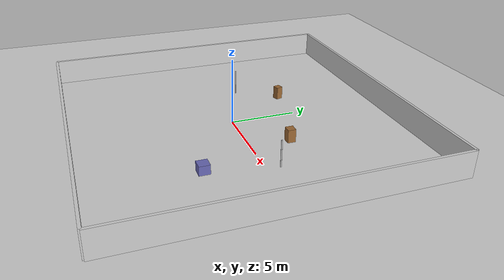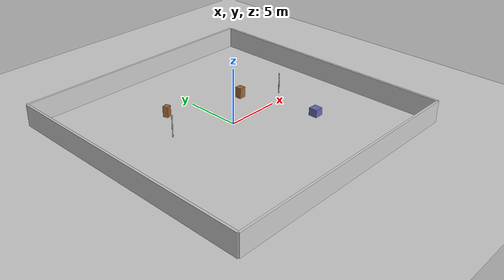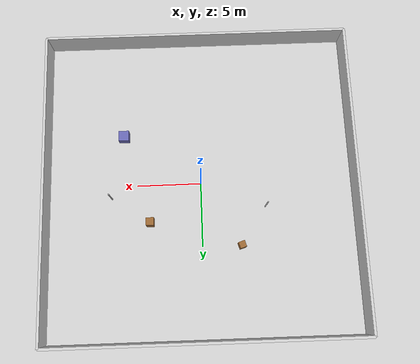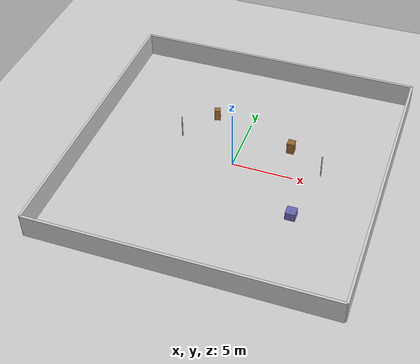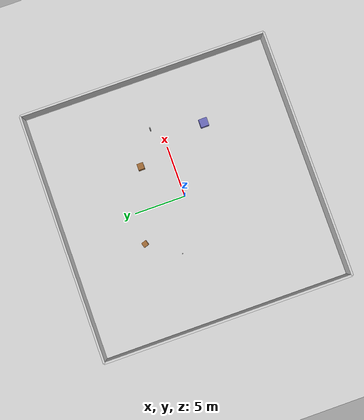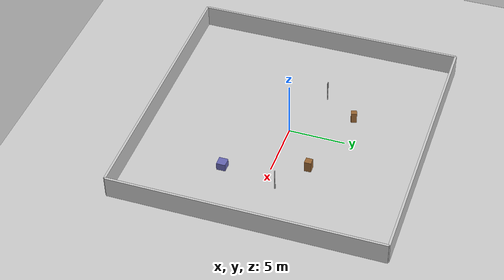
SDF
<sdf version="1.6">
 <world name="person_detection_world">
  <physics name="default_physics" default="0" type="ode">
   <max_step_size>0.001</max_step_size>
   <real_time_factor>1</real_time_factor>
   <real_time_update_rate>1000</real_time_update_rate>
  </physics>
  <plugin name="gazebo_ros_init" filename="libgazebo_ros_init.so"/>
  <plugin name="gazebo_ros_factory" filename="libgazebo_ros_factory.so"/>
  <include><uri>model://sun</uri></include>
  <include><uri>model://ground_plane</uri></include>
  <model name="wall_north">
   <static>true</static>
   <pose>0 12 1.0 0 0 0</pose>
   <link name="link">
    <collision name="collision"><geometry><box><size>24 0.2 2.0</size></box></geometry></collision>
    <visual name="visual">
     <geometry><box><size>24 0.2 2.0</size></box></geometry>
     <material><ambient>0.7 0.7 0.7 1</ambient><diffuse>0.8 0.8 0.8 1</diffuse></material>
    </visual>
   </link>
  </model>
  <model name="wall_south">
   <static>true</static>
   <pose>0 -12 1.0 0 0 0</pose>
   <link name="link">
    <collision name="collision"><geometry><box><size>24 0.2 2.0</size></box></geometry></collision>
    <visual name="visual">
     <geometry><box><size>24 0.2 2.0</size></box></geometry>
     <material><ambient>0.7 0.7 0.7 1</ambient><diffuse>0.8 0.8 0.8 1</diffuse></material>
    </visual>
   </link>
  </model>
  <model name="wall_east">
   <static>true</static>
   <pose>12 0 1.0 0 0 1.5708</pose>
   <link name="link">
    <collision name="collision"><geometry><box><size>24 0.2 2.0</size></box></geometry></collision>
    <visual name="visual">
     <geometry><box><size>24 0.2 2.0</size></box></geometry>
     <material><ambient>0.7 0.7 0.7 1</ambient><diffuse>0.8 0.8 0.8 1</diffuse></material>
    </visual>
   </link>
  </model>
  <model name="wall_west">
   <static>true</static>
   <pose>-12 0 1.0 0 0 1.5708</pose>
   <link name="link">
    <collision name="collision"><geometry><box><size>24 0.2 2.0</size></box></geometry></collision>
    <visual name="visual">
     <geometry><box><size>24 0.2 2.0</size></box></geometry>
     <material><ambient>0.7 0.7 0.7 1</ambient><diffuse>0.8 0.8 0.8 1</diffuse></material>
    </visual>
   </link>
  </model>
  <model name="box_obstacle_1">
   <static>true</static>
   <pose>4 3 0.5 0 0 0</pose>
   <link name="link">
    <collision name="collision"><geometry><box><size>0.6 0.6 1.0</size></box></geometry></collision>
    <visual name="visual">
     <geometry><box><size>0.6 0.6 1.0</size></box></geometry>
     <material><ambient>0.5 0.3 0.1 1</ambient><diffuse>0.6 0.4 0.2 1</diffuse></material>
    </visual>
   </link>
  </model>
  <model name="box_obstacle_2">
   <static>true</static>
   <pose>-3 5 0.5 0 0 0.3</pose>
   <link name="link">
    <collision name="collision"><geometry><box><size>0.5 0.5 1.0</size></box></geometry></collision>
    <visual name="visual">
     <geometry><box><size>0.5 0.5 1.0</size></box></geometry>
     <material><ambient>0.5 0.3 0.1 1</ambient><diffuse>0.6 0.4 0.2 1</diffuse></material>
    </visual>
   </link>
  </model>
  <model name="box_obstacle_3">
   <static>true</static>
   <pose>6 -4 0.35 0 0 0</pose>
   <link name="link">
    <collision name="collision"><geometry><box><size>0.8 0.8 0.7</size></box></geometry></collision>
    <visual name="visual">
     <geometry><box><size>0.8 0.8 0.7</size></box></geometry>
     <material><ambient>0.3 0.3 0.6 1</ambient><diffuse>0.4 0.4 0.7 1</diffuse></material>
    </visual>
   </link>
  </model>
  <model name="pole_1">
   <static>true</static>
   <pose>-5 2 1.0 0 0 0</pose>
   <link name="link">
    <collision name="collision">
     <geometry><cylinder><radius>0.05</radius><length>2.0</length></cylinder></geometry>
    </collision>
    <visual name="visual">
     <geometry><cylinder><radius>0.05</radius><length>2.0</length></cylinder></geometry>
     <material><ambient>0.6 0.6 0.6 1</ambient><diffuse>0.7 0.7 0.7 1</diffuse></material>
    </visual>
   </link>
  </model>
  <model name="pole_2">
   <static>true</static>
   <pose>7 1 1.0 0 0 0</pose>
   <link name="link">
    <collision name="collision">
     <geometry><cylinder><radius>0.05</radius><length>2.0</length></cylinder></geometry>
    </collision>
    <visual name="visual">
     <geometry><cylinder><radius>0.05</radius><length>2.0</length></cylinder></geometry>
     <material><ambient>0.6 0.6 0.6 1</ambient><diffuse>0.7 0.7 0.7 1</diffuse></material>
    </visual>
   </link>
  </model>
 </world>
</sdf>
